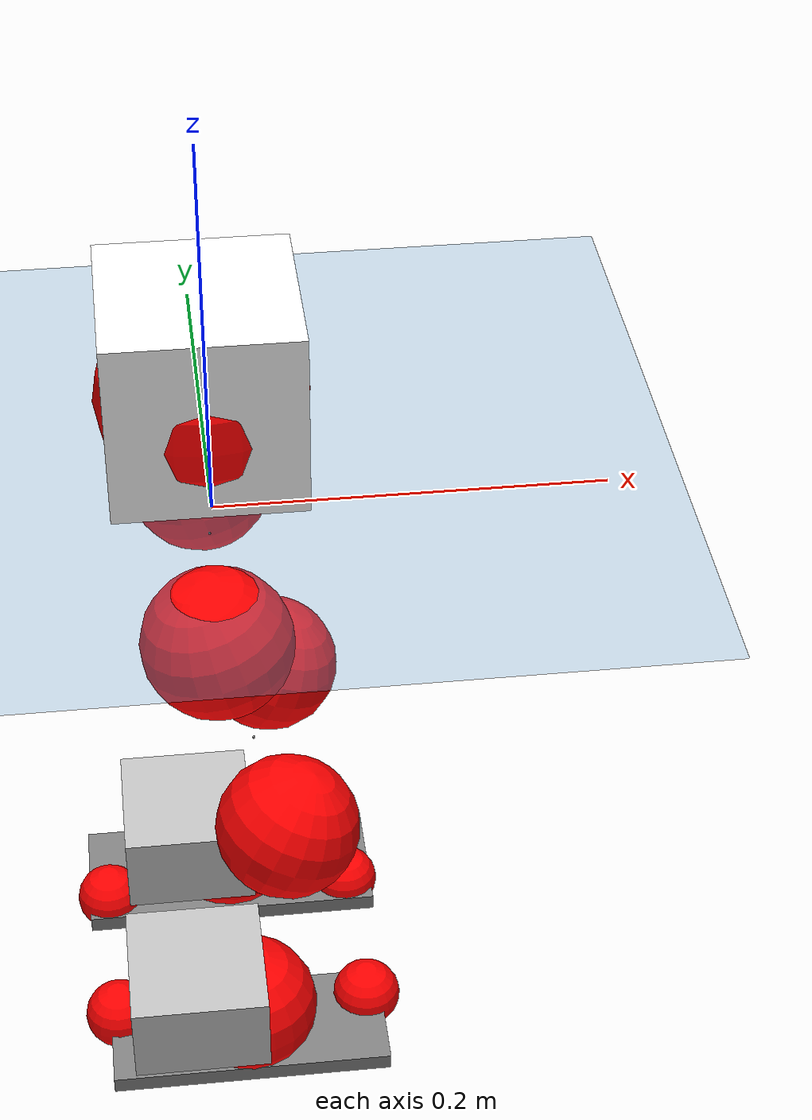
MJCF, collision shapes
<mujoco model="pi_12dof_release_v1">
  <compiler angle="radian" assetdir="assets" balanceinertia="true" inertiafromgeom="false"/>

  <option timestep="0.005" density="1.2" viscosity="2e-05"/>

  <size nkey="1"/>

  <visual>
    <quality shadowsize="8192"/>
    <map shadowclip="0.5"/>
  </visual>

  <default>
    <default class="/">
      <joint armature="0.01" damping="0.01" frictionloss="0.01"/>
      <geom contype="0" conaffinity="0" group="1" solref="-1000 -80"/>
      <site size="0.01 0.005 0.005" group="5"/>
      <general forcelimited="true" biastype="affine" gainprm="20" biasprm="0 -20 -0.5"/>
      <default class="foot">
        <geom size="0.0845 0.036 0.005" type="box" condim="6" group="4" priority="1" friction="0.9 0.2 0.2" solimp="0.015 1 0.005"/>
      </default>
      <default class="reward_collision_sphere">
        <geom group="5" rgba="1 0 0 1"/>
      </default>
    </default>
  </default>

  <asset>
    <texture type="skybox" colorspace="auto" name="//unnamed_texture_0" builtin="gradient" rgb1="0.95 0.95 0.95" rgb2="0.95 0.95 0.95" width="100" height="600"/>
    <texture type="2d" colorspace="auto" name="texplane" builtin="checker" rgb1="0.345 0.575 0.748" rgb2="0.345 0.575 0.748" markrgb="1 1 1" width="512" height="512"/>
    <material name="MatPlane" class="/" texture="texplane" texuniform="true" texrepeat="2 2" specular="0.9"/>
    <mesh name="baselink_1" class="/" file="baselink_1.STL"/>
    <mesh name="r_hip_pitch_link" class="/" file="r_hip_pitch_link.STL"/>
    <mesh name="r_hip_roll_link" class="/" file="r_hip_roll_link.STL"/>
    <mesh name="r_thigh_link" class="/" file="r_thigh_link.STL"/>
    <mesh name="r_calf_link" class="/" file="r_calf_link.STL"/>
    <mesh name="r_ankle_pitch_link" class="/" file="r_ankle_pitch_link.STL"/>
    <mesh name="r_ankle_roll_link" class="/" file="r_ankle_roll_link.STL"/>
    <mesh name="l_hip_pitch_link" class="/" file="l_hip_pitch_link.STL"/>
    <mesh name="l_hip_roll_link" class="/" file="l_hip_roll_link.STL"/>
    <mesh name="l_thigh_link" class="/" file="l_thigh_link.STL"/>
    <mesh name="l_calf_link" class="/" file="l_calf_link.STL"/>
    <mesh name="l_ankle_pitch_link" class="/" file="l_ankle_pitch_link.STL"/>
    <mesh name="l_ankle_roll_link" class="/" file="l_ankle_roll_link.STL"/>
  </asset>

  <worldbody>
    <geom name="floor" class="/" size="100 100 0.125" type="plane" group="0" material="MatPlane"/>
    <light name="toplight_shadow" class="/" pos="0 0 5" dir="0.0990148 0.0990148 -0.990148" type="directional" ambient="0.04 0.04 0.04" diffuse="0.55 0.55 0.55" specular="0.12 0.12 0.12"/>
    <light name="toplight_fill" class="/" pos="0 0 5" dir="0.0990148 0.0990148 -0.990148" type="directional" castshadow="false" ambient="0.04 0.04 0.04" diffuse="0.3 0.3 0.3" specular="0.08 0.08 0.08"/>
    <body name="trunk" pos="-0.00234676 -0.000705618 0.00100289" quat="1 -0.000204713 0.00069425 -0.000140295">
      <inertial pos="-7.05528e-05 0.000553438 0.0387144" quat="0.697238 0.010404 0.00515337 0.716746" mass="1.83664" diaginertia="0.0124103 0.00399269 0.00342747"/>
      <joint name="//unnamed_joint_0" type="free"/>
      <geom name="//unnamed_geom_1" class="/" type="mesh" density="0" rgba="1 1 1 1" mesh="baselink_1"/>
      <geom name="//unnamed_geom_2" class="/" size="0.0475033 0.0475033 0.0475033" pos="0 0 0.0765326" type="box" rgba="1 1 1 1"/>
      <geom name="//unnamed_geom_3" class="reward_collision_sphere" size="0.0522537" pos="0 0 0.066966"/>
      <site name="imu" class="/" pos="-0.000320715 -0.00519594 0.00437518" size="0.00950066"/>
      <camera name="track" class="/" pos="0 -1.6959 0" quat="0.707107 0.707107 0 0" mode="trackcom"/>
      <camera name="ego_camera" class="/" pos="0.0784195 0 0.172198" quat="-0.5 -0.5 0.5 0.5"/>
      <body name="r_hip_pitch_link" pos="-0.000341484 -0.0185696 -0.0320899" quat="0.992251 0.000863431 -0.124246 -0.0004946">
        <inertial pos="-0.00140221 -0.047861 0.000946341" quat="-0.0184558 0.706079 -0.0301416 0.70725" mass="0.323444" diaginertia="0.000138752 4.27835e-05 6.78388e-05"/>
        <joint name="r_hip_pitch_joint" class="/" pos="0 0 0" axis="-0.00189904 -0.999997 -0.00123668" range="-1.75116 1.22914" armature="0.00949915" damping="0.0165577" frictionloss="0.00988055"/>
        <geom name="//unnamed_geom_4" class="/" type="mesh" density="0" rgba="0.75294 0.75294 0.75294 1" mesh="r_hip_pitch_link"/>
        <geom name="//unnamed_geom_5" class="/" size="0.000475033 0.000475033 0.000475033" type="box" rgba="0.75294 0.75294 0.75294 1"/>
        <body name="r_hip_roll_link" pos="-0.000424985 -0.0479745 -0.000477778" quat="1 9.15846e-06 4.75446e-05 1.23199e-05">
          <inertial pos="0.00104375 0.000542791 -0.0570673" quat="0.707727 -0.0788278 -0.0826045 0.697198" mass="0.335776" diaginertia="0.000414118 0.000120443 0.000104051"/>
          <joint name="r_hip_roll_joint" class="/" pos="0 0 0" axis="-1 -0.000324227 -2.08897e-05" range="-0.151384 0.484339" armature="0.00844294" damping="0.000912238" frictionloss="0.00952643"/>
          <geom name="//unnamed_geom_6" class="/" type="mesh" density="0" rgba="0.75294 0.75294 0.75294 1" mesh="r_hip_roll_link"/>
          <geom name="//unnamed_geom_7" class="/" size="0.000475033 0.000475033 0.000475033" type="box" rgba="0.75294 0.75294 0.75294 1"/>
          <geom name="//unnamed_geom_8" class="reward_collision_sphere" size="0.0380027"/>
          <body name="r_thigh_link" pos="-0.000279895 -0.000213866 -0.0654575" quat="1 -1.47721e-05 0.000150651 2.69239e-05">
            <inertial pos="0.000419443 0.000240098 -0.0464304" quat="0.738095 0.674629 -0.00524446 -0.00797116" mass="0.0954911" diaginertia="0.00015808 4.11909e-05 4.61249e-05"/>
            <joint name="r_thigh_joint" class="/" pos="0 0 0" axis="-0.00332055 0.00189578 -0.999993" range="-0.300211 0.598903" armature="0.0086351" damping="0" frictionloss="0.0092966"/>
            <geom name="//unnamed_geom_9" class="/" type="mesh" density="0" rgba="0.75294 0.75294 0.75294 1" mesh="r_thigh_link"/>
            <geom name="//unnamed_geom_10" class="/" size="0.000475033 0.000475033 0.000475033" type="box" rgba="0.75294 0.75294 0.75294 1"/>
            <body name="r_calf_link" pos="-0.000334197 0.000231092 -0.0668382" quat="0.947748 -5.41808e-05 0.319019 0.000182851">
              <inertial pos="0.000834747 -0.00175695 -0.0668901" quat="0.999986 -0.00189813 -0.000594887 0.0048276" mass="0.726185" diaginertia="0.00443061 0.00155638 0.000140608"/>
              <joint name="r_calf_joint" class="/" pos="0 0 0" axis="0.000417498 -0.999999 -0.00136147" stiffness="0.00727531" range="-1.65817 0.611009" armature="0.0108217" damping="0" frictionloss="0.0106883"/>
              <geom name="//unnamed_geom_11" class="/" type="mesh" density="0" rgba="0.75294 0.75294 0.75294 1" mesh="r_calf_link"/>
              <geom name="//unnamed_geom_12" class="/" size="0.000475033 0.000475033 0.000475033" type="box" rgba="0.75294 0.75294 0.75294 1"/>
              <geom name="//unnamed_geom_13" class="reward_collision_sphere" size="0.0380027"/>
              <body name="r_ankle_pitch_link" pos="-0.000526811 0.000948648 -0.132097" quat="0.979869 0.000365323 -0.199639 -0.000592472">
                <inertial pos="0.00411757 0.000619107 0.000676497" quat="0.00323364 0.707614 -0.00261691 0.706587" mass="0.148029" diaginertia="0.000388248 9.95688e-05 9.55141e-05"/>
                <joint name="r_ankle_pitch_joint" class="/" pos="0 0 0" axis="0.0104654 -0.999908 0.00863972" range="-1.32628 0.526424" armature="0.00948854" damping="0.00853138" frictionloss="0.00923107"/>
                <geom name="//unnamed_geom_14" class="/" type="mesh" density="0" rgba="0.75294 0.75294 0.75294 1" mesh="r_ankle_pitch_link"/>
                <geom name="//unnamed_geom_15" class="/" size="0.0370526 0.0380027 0.0237517" type="box" rgba="0.75294 0.75294 0.75294 1"/>
                <body name="r_ankle_roll_link" pos="0.0807407 0.0031967 0.00018638" quat="1 -7.17191e-05 2.85445e-06 2.11873e-05">
                  <inertial pos="-0.0252775 0.000178941 -0.013127" quat="0.559717 0.431729 0.433596 0.558857" mass="0.448723" diaginertia="0.0014735 0.000455962 0.000232168"/>
                  <joint name="r_ankle_roll_joint" class="/" pos="0 0 0" axis="-0.99991 0.00714183 -0.0113401" stiffness="0.000769233" range="-0.163289 0.118948" armature="0.00931851" damping="0.00250842" frictionloss="0.00935447"/>
                  <geom name="//unnamed_geom_16" class="/" type="mesh" density="0" rgba="0.75294 0.75294 0.75294 1" mesh="r_ankle_roll_link"/>
                  <geom name="//unnamed_geom_17" class="/" type="mesh" rgba="0.75294 0.75294 0.75294 1" mesh="r_ankle_roll_link"/>
                  <geom name="right_foot" class="foot" size="0.0770953 0.0322764 0.00476845" pos="-0.0533252 0 -0.0420929"/>
                  <geom name="//unnamed_geom_19" class="reward_collision_sphere" size="0.0380027" pos="-0.0522796 0 -0.0191332"/>
                  <geom name="//unnamed_geom_20" class="reward_collision_sphere" size="0.0190013" pos="0.0156839 0.016959 -0.0382663"/>
                  <geom name="//unnamed_geom_21" class="reward_collision_sphere" size="0.0190013" pos="-0.125471 0.016959 -0.0382663"/>
                  <site name="right_foot" class="foot" pos="-0.0533252 0 -0.0420929" size="0.00950066"/>
                </body>
              </body>
            </body>
          </body>
        </body>
      </body>
      <body name="l_hip_pitch_link" pos="0.00132183 0.0186466 -0.0309077" quat="0.992075 -0.000691971 -0.125647 0.000428035">
        <inertial pos="0.00320904 0.0465433 0.000132967" quat="-0.0384785 0.705871 0.029822 0.706665" mass="0.333161" diaginertia="0.000160893 4.68087e-05 8.18328e-05"/>
        <joint name="l_hip_pitch_joint" class="/" pos="0 0 0" axis="-0.000265828 0.999992 0.00408977" range="-1.24814 1.75449" armature="0.0100622" damping="0" frictionloss="0.00906259"/>
        <geom name="//unnamed_geom_22" class="/" type="mesh" density="0" rgba="0.75294 0.75294 0.75294 1" mesh="l_hip_pitch_link"/>
        <geom name="//unnamed_geom_23" class="/" size="0.000475033 0.000475033 0.000475033" type="box" rgba="0.75294 0.75294 0.75294 1"/>
        <body name="l_hip_roll_link" pos="-0.00186154 0.0470577 0.00111975" quat="0.999999 -0.00067428 -0.000458312 -0.000724063">
          <inertial pos="-0.00156503 -0.000405076 -0.0580395" quat="0.702242 -0.0669072 -0.0801772 0.704238" mass="0.326382" diaginertia="0.000411739 0.000119763 0.000101665"/>
          <joint name="l_hip_roll_joint" class="/" pos="0 0 0" axis="-0.999982 0.00546752 0.00240794" stiffness="0.00735285" range="-0.480873 0.135818" armature="0.0099844" damping="0" frictionloss="0.00921406"/>
          <geom name="//unnamed_geom_24" class="/" type="mesh" density="0" rgba="0.75294 0.75294 0.75294 1" mesh="l_hip_roll_link"/>
          <geom name="//unnamed_geom_25" class="/" size="0.000475033 0.000475033 0.000475033" type="box" rgba="0.75294 0.75294 0.75294 1"/>
          <geom name="//unnamed_geom_26" class="reward_collision_sphere" size="0.0380027"/>
          <body name="l_thigh_link" pos="-9.36843e-06 -0.00116119 -0.0667832" quat="1 -0.000126921 0.000261108 -0.00010943">
            <inertial pos="0.000245165 -0.00142693 -0.0458251" quat="0.675646 0.737226 0.000318852 0.000487882" mass="0.0967492" diaginertia="0.00015571 4.1443e-05 4.60493e-05"/>
            <joint name="l_thigh_joint" class="/" pos="0 0 0" axis="-0.00229989 -0.00037378 -0.999997" range="-0.602456 0.296136" armature="0.00965042" damping="0.00142478" frictionloss="0.0093736"/>
            <geom name="//unnamed_geom_27" class="/" type="mesh" density="0" rgba="0.75294 0.75294 0.75294 1" mesh="l_thigh_link"/>
            <geom name="//unnamed_geom_28" class="/" size="0.000475033 0.000475033 0.000475033" type="box" rgba="0.75294 0.75294 0.75294 1"/>
            <body name="l_calf_link" pos="0.000461896 -0.00163416 -0.0660681" quat="0.9476 -0.000336537 0.319458 -0.000400869">
              <inertial pos="0.000377017 0.00356488 -0.0670794" quat="0.999904 0.0110854 0.00656158 0.00513411" mass="0.700646" diaginertia="0.00440789 0.00154331 0.000142029"/>
              <joint name="l_calf_joint" class="/" pos="0 0 0" axis="8.01375e-05 1 -0.000136243" stiffness="0.00434342" range="-0.646426 1.65712" armature="0.00833209" damping="0.0041365" frictionloss="0.0106343"/>
              <geom name="//unnamed_geom_29" class="/" type="mesh" density="0" rgba="0.75294 0.75294 0.75294 1" mesh="l_calf_link"/>
              <geom name="//unnamed_geom_30" class="/" size="0.000475033 0.000475033 0.000475033" type="box" rgba="0.75294 0.75294 0.75294 1"/>
              <geom name="//unnamed_geom_31" class="reward_collision_sphere" size="0.0380027"/>
              <body name="l_ankle_pitch_link" pos="0.001126 0.00179537 -0.13562" quat="0.979999 -0.000161239 -0.199001 1.68751e-05">
                <inertial pos="0.00517662 -0.000284988 -0.000182014" quat="-0.00223136 0.707099 0.00221237 0.707108" mass="0.154098" diaginertia="0.000394026 9.86526e-05 9.47112e-05"/>
                <joint name="l_ankle_pitch_joint" class="/" pos="0 0 0" axis="0.00025553 1 0.000134148" range="-0.495442 1.29979" armature="0.00959437" damping="0.00205357" frictionloss="0.00907011"/>
                <geom name="//unnamed_geom_32" class="/" type="mesh" density="0" rgba="0.75294 0.75294 0.75294 1" mesh="l_ankle_pitch_link"/>
                <geom name="//unnamed_geom_33" class="/" size="0.0370526 0.0380027 0.0237517" type="box" rgba="0.75294 0.75294 0.75294 1"/>
                <body name="l_ankle_roll_link" pos="0.0765322 0.00240742 -0.000220406" quat="1 2.86148e-05 -5.46764e-05 -0.000249734">
                  <inertial pos="-0.0230433 -0.0006277 -0.014268" quat="0.560909 0.432428 0.429698 0.560131" mass="0.44482" diaginertia="0.00136642 0.000433584 0.000221416"/>
                  <joint name="l_ankle_roll_joint" class="/" pos="0 0 0" axis="-0.999966 0.00800559 0.00211075" range="-0.134432 0.154838" armature="0.00972664" damping="0.00634261" frictionloss="0.0091411"/>
                  <geom name="//unnamed_geom_34" class="/" type="mesh" density="0" rgba="0.75294 0.75294 0.75294 1" mesh="l_ankle_roll_link"/>
                  <geom name="//unnamed_geom_35" class="/" type="mesh" rgba="0.75294 0.75294 0.75294 1" mesh="l_ankle_roll_link"/>
                  <geom name="left_foot" class="foot" size="0.0841301 0.0361003 0.00473881" pos="-0.0533252 0 -0.0420929"/>
                  <geom name="//unnamed_geom_37" class="reward_collision_sphere" size="0.0380027" pos="-0.0522796 0 -0.0191332"/>
                  <geom name="//unnamed_geom_38" class="reward_collision_sphere" size="0.0190013" pos="0.0156839 -0.016959 -0.0382663"/>
                  <geom name="//unnamed_geom_39" class="reward_collision_sphere" size="0.0190013" pos="-0.125471 -0.016959 -0.0382663"/>
                  <site name="left_foot" class="foot" pos="-0.0533252 0 -0.0420929" size="0.00950066"/>
                </body>
              </body>
            </body>
          </body>
        </body>
      </body>
    </body>
  </worldbody>

  <contact>
    <pair class="/" geom1="floor" geom2="right_foot" name="//unnamed_contact_1"/>
    <pair class="/" geom1="floor" geom2="left_foot" name="//unnamed_contact_0"/>
  </contact>

  <actuator>
    <general name="r_hip_pitch_joint" class="/" joint="r_hip_pitch_joint" forcerange="-20.3311 20.3311" gainprm="19.1551" biasprm="0 -19.1551 -0.483735"/>
    <general name="r_hip_roll_joint" class="/" joint="r_hip_roll_joint" forcerange="-19.957 19.957" gainprm="19.1551" biasprm="0 -19.1551 -0.483735"/>
    <general name="r_thigh_joint" class="/" joint="r_thigh_joint" forcerange="-19.8582 19.8582" gainprm="19.1551" biasprm="0 -19.1551 -0.483735"/>
    <general name="r_calf_joint" class="/" joint="r_calf_joint" forcerange="-20.0531 20.0531" gainprm="19.1551" biasprm="0 -19.1551 -0.483735"/>
    <general name="r_ankle_pitch_joint" class="/" joint="r_ankle_pitch_joint" forcerange="-19.6737 19.6737" gainprm="19.1551" biasprm="0 -19.1551 -0.483735"/>
    <general name="r_ankle_roll_joint" class="/" joint="r_ankle_roll_joint" forcerange="-20.1444 20.1444" gainprm="19.1551" biasprm="0 -19.1551 -0.483735"/>
    <general name="l_hip_pitch_joint" class="/" joint="l_hip_pitch_joint" forcerange="-19.8067 19.8067" gainprm="19.1551" biasprm="0 -19.1551 -0.483735"/>
    <general name="l_hip_roll_joint" class="/" joint="l_hip_roll_joint" forcerange="-20.3356 20.3356" gainprm="19.1551" biasprm="0 -19.1551 -0.483735"/>
    <general name="l_thigh_joint" class="/" joint="l_thigh_joint" forcerange="-19.9481 19.9481" gainprm="19.1551" biasprm="0 -19.1551 -0.483735"/>
    <general name="l_calf_joint" class="/" joint="l_calf_joint" forcerange="-21.8185 21.8185" gainprm="19.1551" biasprm="0 -19.1551 -0.483735"/>
    <general name="l_ankle_pitch_joint" class="/" joint="l_ankle_pitch_joint" forcerange="-20.0461 20.0461" gainprm="19.1551" biasprm="0 -19.1551 -0.483735"/>
    <general name="l_ankle_roll_joint" class="/" joint="l_ankle_roll_joint" forcerange="-19.1591 19.1591" gainprm="19.1551" biasprm="0 -19.1551 -0.483735"/>
  </actuator>

  <sensor>
    <gyro site="imu" name="imu_angular_velocity"/>
    <velocimeter site="imu" name="imu_linear_velocity"/>
    <framelinvel objtype="site" objname="left_foot" name="left_foot_global_linear_velocity"/>
    <framelinvel objtype="site" objname="right_foot" name="right_foot_global_linear_velocity"/>
  </sensor>

  <keyframe>
    <key name="home" qpos="0 0 0.291 1 0 0 0 0.4 0 0 -0.8 0.4 0 -0.4 0 0 0.8 -0.4 0"/>
  </keyframe>
</mujoco>
